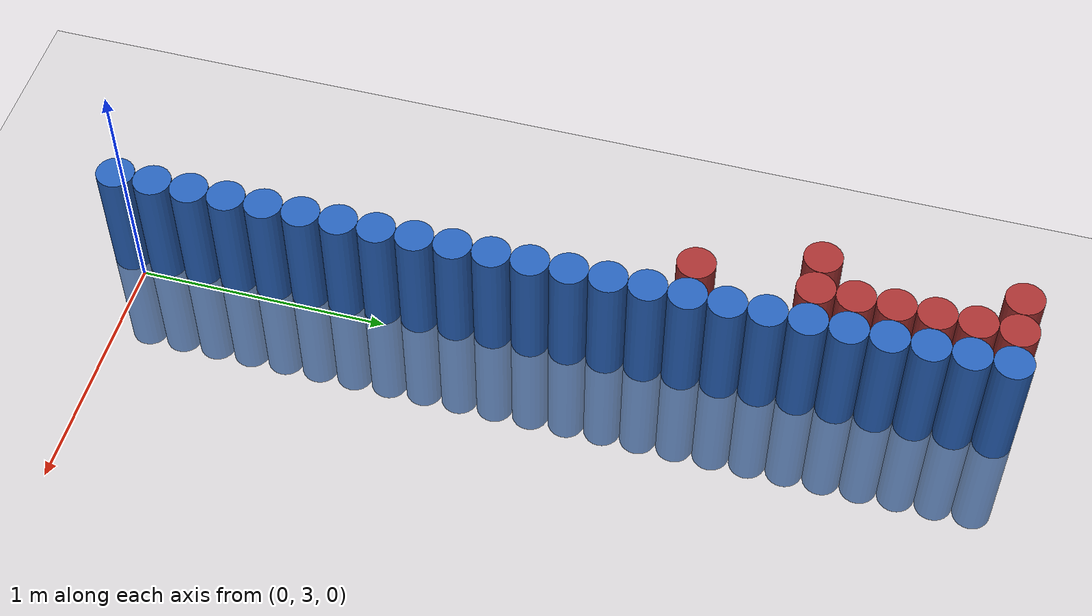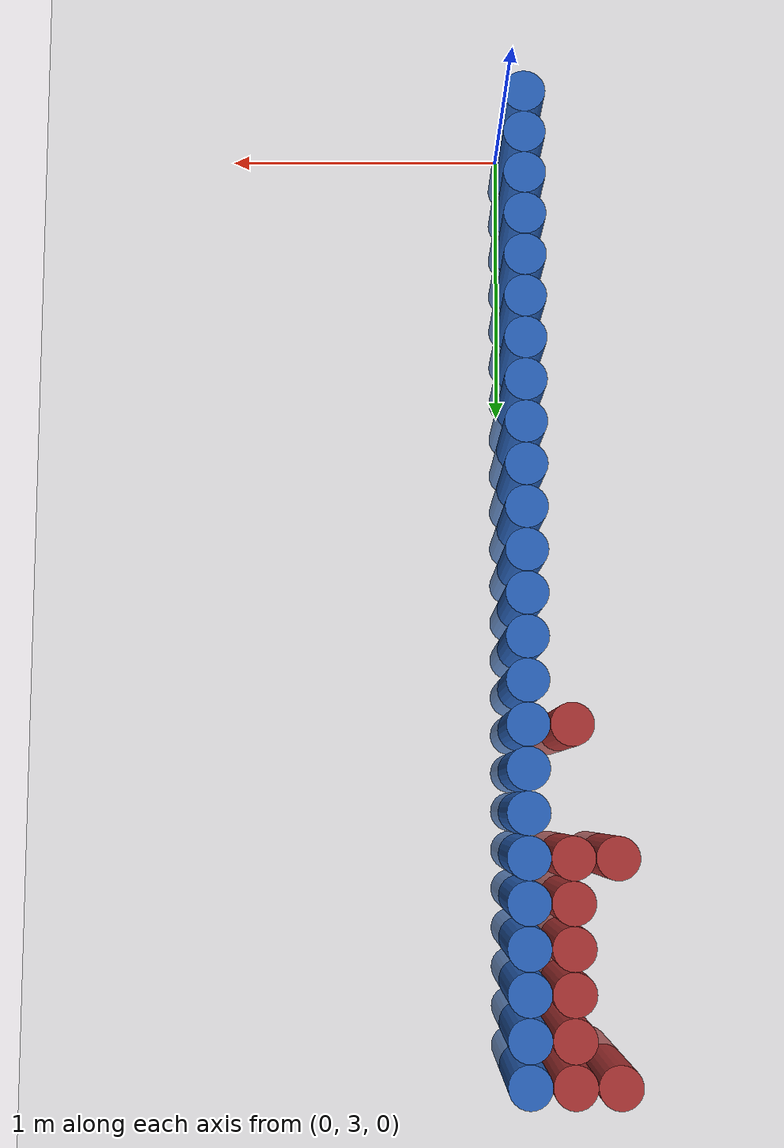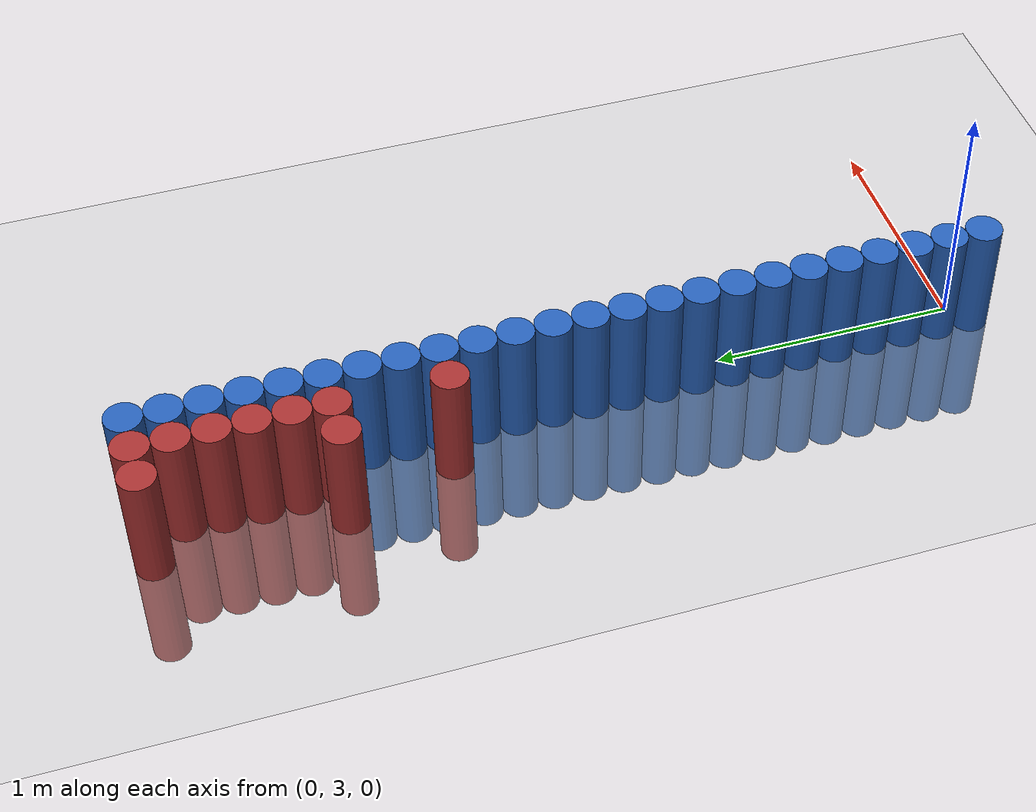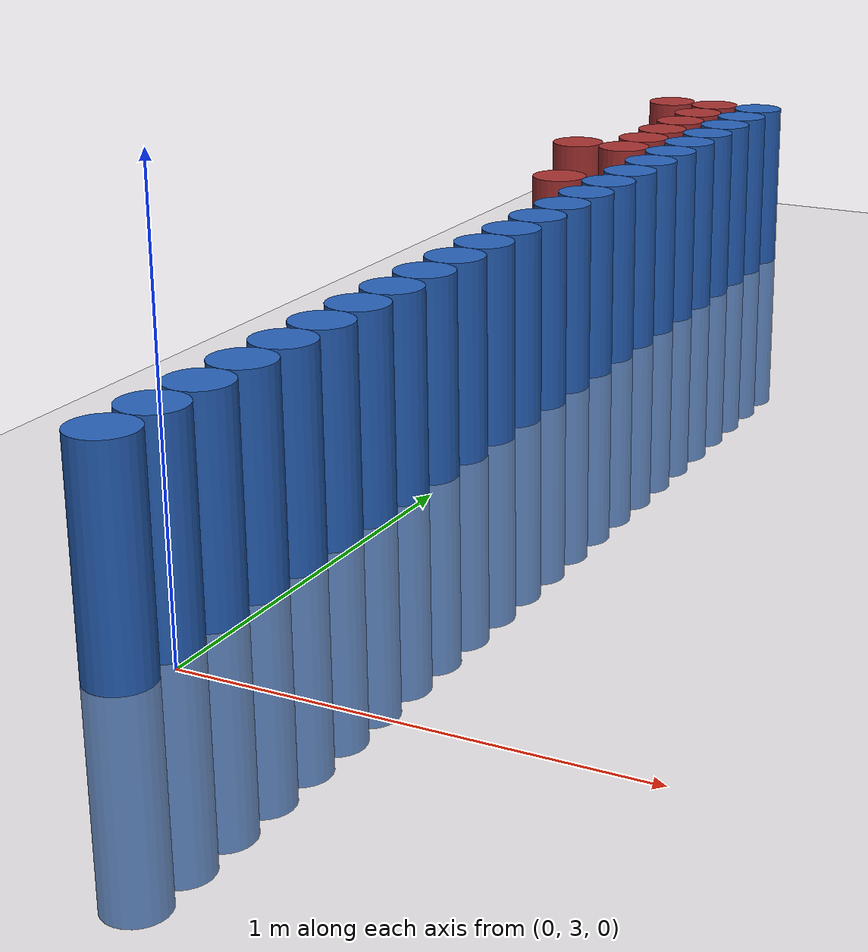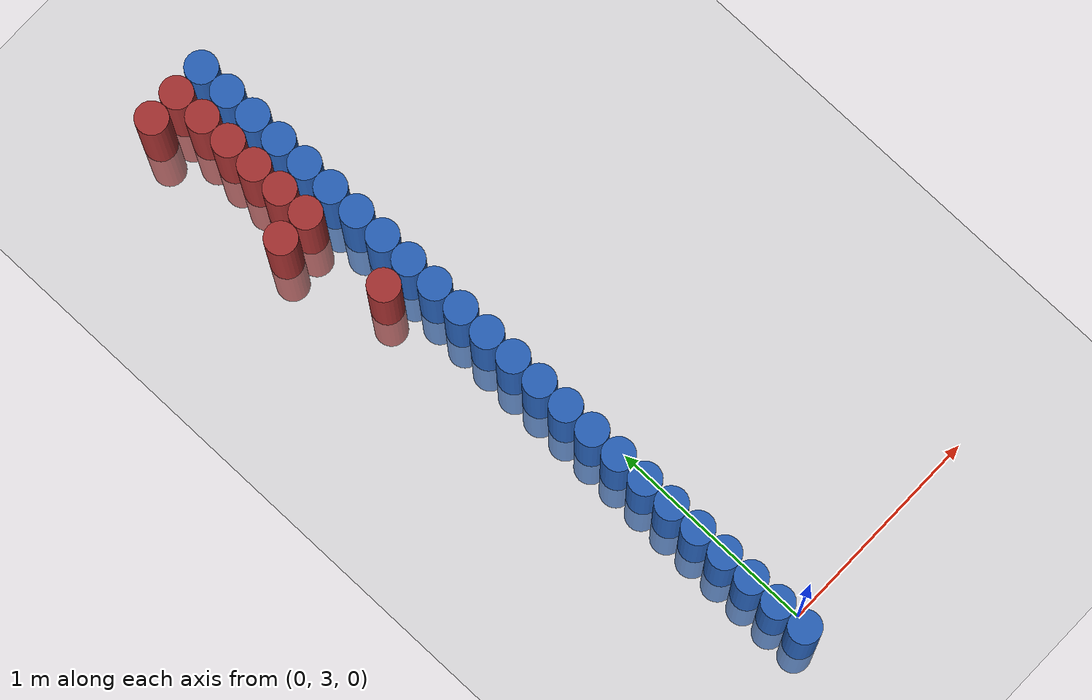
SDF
<sdf version="1.6">
 <world name="default">
  <model name="ground_plane">
   <static>1</static>
   <link name="link">
    <collision name="collision">
     <geometry><plane><normal>0 0 1</normal><size>100 100</size></plane></geometry>
     <surface><friction><ode><mu>100</mu><mu2>50</mu2></ode></friction></surface>
    </collision>
    <visual name="visual">
     <cast_shadows>0</cast_shadows>
     <geometry><plane><normal>0 0 1</normal><size>100 100</size></plane></geometry>
     <material>
      <script><uri>file://media/materials/scripts/gazebo.material</uri><name>Gazebo/Grey</name></script>
     </material>
    </visual>
   </link>
  </model>
  <model name="unit_cylinder_66">
   <static>1</static>
   <pose>-0.075000 2.925000 0.000000 0.000000 0.000000 0.000000</pose>
   <link name="link">
    <inertial>
     <mass>1</mass>
     <inertia><ixx>0.145833</ixx><ixy>0</ixy><ixz>0</ixz><iyy>0.145833</iyy><iyz>0</iyz><izz>0.125</izz></inertia>
    </inertial>
    <collision name="collision">
     <geometry><cylinder><radius>0.075000</radius><length>1</length></cylinder></geometry>
    </collision>
    <visual name="visual">
     <geometry><cylinder><radius>0.075000</radius><length>1</length></cylinder></geometry>
     <material>
      <ambient>0.152000 0.379000 0.720000 1</ambient>
      <diffuse>0.152000 0.379000 0.720000 1</diffuse>
     </material>
     <material>
      <script><name>Gazebo/Grey</name><uri>file://media/materials/scripts/gazebo.material</uri></script>
     </material>
    </visual>
    <sensor name="sensor_contact" type="contact"><contact><collision>collision</collision></contact></sensor>
   </link>
   <plugin filename="gz-sim-touchplugin-system" name="gz::sim::systems::TouchPlugin">
    <target>robot</target>
    <namespace>robot</namespace>
    <time>0.001</time>
    <enabled>true</enabled>
   </plugin>
  </model>
  <model name="unit_cylinder_68">
   <static>1</static>
   <pose>-0.075000 3.075000 0.000000 0.000000 0.000000 0.000000</pose>
   <link name="link">
    <inertial>
     <mass>1</mass>
     <inertia><ixx>0.145833</ixx><ixy>0</ixy><ixz>0</ixz><iyy>0.145833</iyy><iyz>0</iyz><izz>0.125</izz></inertia>
    </inertial>
    <collision name="collision">
     <geometry><cylinder><radius>0.075000</radius><length>1</length></cylinder></geometry>
    </collision>
    <visual name="visual">
     <geometry><cylinder><radius>0.075000</radius><length>1</length></cylinder></geometry>
     <material>
      <ambient>0.152000 0.379000 0.720000 1</ambient>
      <diffuse>0.152000 0.379000 0.720000 1</diffuse>
     </material>
     <material>
      <script><name>Gazebo/Grey</name><uri>file://media/materials/scripts/gazebo.material</uri></script>
     </material>
    </visual>
    <sensor name="sensor_contact" type="contact"><contact><collision>collision</collision></contact></sensor>
   </link>
   <plugin filename="gz-sim-touchplugin-system" name="gz::sim::systems::TouchPlugin">
    <target>robot</target>
    <namespace>robot</namespace>
    <time>0.001</time>
    <enabled>true</enabled>
   </plugin>
  </model>
  <model name="unit_cylinder_70">
   <static>1</static>
   <pose>-0.075000 3.225000 0.000000 0.000000 0.000000 0.000000</pose>
   <link name="link">
    <inertial>
     <mass>1</mass>
     <inertia><ixx>0.145833</ixx><ixy>0</ixy><ixz>0</ixz><iyy>0.145833</iyy><iyz>0</iyz><izz>0.125</izz></inertia>
    </inertial>
    <collision name="collision">
     <geometry><cylinder><radius>0.075000</radius><length>1</length></cylinder></geometry>
    </collision>
    <visual name="visual">
     <geometry><cylinder><radius>0.075000</radius><length>1</length></cylinder></geometry>
     <material>
      <ambient>0.152000 0.379000 0.720000 1</ambient>
      <diffuse>0.152000 0.379000 0.720000 1</diffuse>
     </material>
     <material>
      <script><name>Gazebo/Grey</name><uri>file://media/materials/scripts/gazebo.material</uri></script>
     </material>
    </visual>
    <sensor name="sensor_contact" type="contact"><contact><collision>collision</collision></contact></sensor>
   </link>
   <plugin filename="gz-sim-touchplugin-system" name="gz::sim::systems::TouchPlugin">
    <target>robot</target>
    <namespace>robot</namespace>
    <time>0.001</time>
    <enabled>true</enabled>
   </plugin>
  </model>
  <model name="unit_cylinder_72">
   <static>1</static>
   <pose>-0.075000 3.375000 0.000000 0.000000 0.000000 0.000000</pose>
   <link name="link">
    <inertial>
     <mass>1</mass>
     <inertia><ixx>0.145833</ixx><ixy>0</ixy><ixz>0</ixz><iyy>0.145833</iyy><iyz>0</iyz><izz>0.125</izz></inertia>
    </inertial>
    <collision name="collision">
     <geometry><cylinder><radius>0.075000</radius><length>1</length></cylinder></geometry>
    </collision>
    <visual name="visual">
     <geometry><cylinder><radius>0.075000</radius><length>1</length></cylinder></geometry>
     <material>
      <ambient>0.152000 0.379000 0.720000 1</ambient>
      <diffuse>0.152000 0.379000 0.720000 1</diffuse>
     </material>
     <material>
      <script><name>Gazebo/Grey</name><uri>file://media/materials/scripts/gazebo.material</uri></script>
     </material>
    </visual>
    <sensor name="sensor_contact" type="contact"><contact><collision>collision</collision></contact></sensor>
   </link>
   <plugin filename="gz-sim-touchplugin-system" name="gz::sim::systems::TouchPlugin">
    <target>robot</target>
    <namespace>robot</namespace>
    <time>0.001</time>
    <enabled>true</enabled>
   </plugin>
  </model>
  <model name="unit_cylinder_74">
   <static>1</static>
   <pose>-0.075000 3.525000 0.000000 0.000000 0.000000 0.000000</pose>
   <link name="link">
    <inertial>
     <mass>1</mass>
     <inertia><ixx>0.145833</ixx><ixy>0</ixy><ixz>0</ixz><iyy>0.145833</iyy><iyz>0</iyz><izz>0.125</izz></inertia>
    </inertial>
    <collision name="collision">
     <geometry><cylinder><radius>0.075000</radius><length>1</length></cylinder></geometry>
    </collision>
    <visual name="visual">
     <geometry><cylinder><radius>0.075000</radius><length>1</length></cylinder></geometry>
     <material>
      <ambient>0.152000 0.379000 0.720000 1</ambient>
      <diffuse>0.152000 0.379000 0.720000 1</diffuse>
     </material>
     <material>
      <script><name>Gazebo/Grey</name><uri>file://media/materials/scripts/gazebo.material</uri></script>
     </material>
    </visual>
    <sensor name="sensor_contact" type="contact"><contact><collision>collision</collision></contact></sensor>
   </link>
   <plugin filename="gz-sim-touchplugin-system" name="gz::sim::systems::TouchPlugin">
    <target>robot</target>
    <namespace>robot</namespace>
    <time>0.001</time>
    <enabled>true</enabled>
   </plugin>
  </model>
  <model name="unit_cylinder_76">
   <static>1</static>
   <pose>-0.075000 3.675000 0.000000 0.000000 0.000000 0.000000</pose>
   <link name="link">
    <inertial>
     <mass>1</mass>
     <inertia><ixx>0.145833</ixx><ixy>0</ixy><ixz>0</ixz><iyy>0.145833</iyy><iyz>0</iyz><izz>0.125</izz></inertia>
    </inertial>
    <collision name="collision">
     <geometry><cylinder><radius>0.075000</radius><length>1</length></cylinder></geometry>
    </collision>
    <visual name="visual">
     <geometry><cylinder><radius>0.075000</radius><length>1</length></cylinder></geometry>
     <material>
      <ambient>0.152000 0.379000 0.720000 1</ambient>
      <diffuse>0.152000 0.379000 0.720000 1</diffuse>
     </material>
     <material>
      <script><name>Gazebo/Grey</name><uri>file://media/materials/scripts/gazebo.material</uri></script>
     </material>
    </visual>
    <sensor name="sensor_contact" type="contact"><contact><collision>collision</collision></contact></sensor>
   </link>
   <plugin filename="gz-sim-touchplugin-system" name="gz::sim::systems::TouchPlugin">
    <target>robot</target>
    <namespace>robot</namespace>
    <time>0.001</time>
    <enabled>true</enabled>
   </plugin>
  </model>
  <model name="unit_cylinder_78">
   <static>1</static>
   <pose>-0.075000 3.825000 0.000000 0.000000 0.000000 0.000000</pose>
   <link name="link">
    <inertial>
     <mass>1</mass>
     <inertia><ixx>0.145833</ixx><ixy>0</ixy><ixz>0</ixz><iyy>0.145833</iyy><iyz>0</iyz><izz>0.125</izz></inertia>
    </inertial>
    <collision name="collision">
     <geometry><cylinder><radius>0.075000</radius><length>1</length></cylinder></geometry>
    </collision>
    <visual name="visual">
     <geometry><cylinder><radius>0.075000</radius><length>1</length></cylinder></geometry>
     <material>
      <ambient>0.152000 0.379000 0.720000 1</ambient>
      <diffuse>0.152000 0.379000 0.720000 1</diffuse>
     </material>
     <material>
      <script><name>Gazebo/Grey</name><uri>file://media/materials/scripts/gazebo.material</uri></script>
     </material>
    </visual>
    <sensor name="sensor_contact" type="contact"><contact><collision>collision</collision></contact></sensor>
   </link>
   <plugin filename="gz-sim-touchplugin-system" name="gz::sim::systems::TouchPlugin">
    <target>robot</target>
    <namespace>robot</namespace>
    <time>0.001</time>
    <enabled>true</enabled>
   </plugin>
  </model>
  <model name="unit_cylinder_80">
   <static>1</static>
   <pose>-0.075000 3.975000 0.000000 0.000000 0.000000 0.000000</pose>
   <link name="link">
    <inertial>
     <mass>1</mass>
     <inertia><ixx>0.145833</ixx><ixy>0</ixy><ixz>0</ixz><iyy>0.145833</iyy><iyz>0</iyz><izz>0.125</izz></inertia>
    </inertial>
    <collision name="collision">
     <geometry><cylinder><radius>0.075000</radius><length>1</length></cylinder></geometry>
    </collision>
    <visual name="visual">
     <geometry><cylinder><radius>0.075000</radius><length>1</length></cylinder></geometry>
     <material>
      <ambient>0.152000 0.379000 0.720000 1</ambient>
      <diffuse>0.152000 0.379000 0.720000 1</diffuse>
     </material>
     <material>
      <script><name>Gazebo/Grey</name><uri>file://media/materials/scripts/gazebo.material</uri></script>
     </material>
    </visual>
    <sensor name="sensor_contact" type="contact"><contact><collision>collision</collision></contact></sensor>
   </link>
   <plugin filename="gz-sim-touchplugin-system" name="gz::sim::systems::TouchPlugin">
    <target>robot</target>
    <namespace>robot</namespace>
    <time>0.001</time>
    <enabled>true</enabled>
   </plugin>
  </model>
  <model name="unit_cylinder_82">
   <static>1</static>
   <pose>-0.075000 4.125000 0.000000 0.000000 0.000000 0.000000</pose>
   <link name="link">
    <inertial>
     <mass>1</mass>
     <inertia><ixx>0.145833</ixx><ixy>0</ixy><ixz>0</ixz><iyy>0.145833</iyy><iyz>0</iyz><izz>0.125</izz></inertia>
    </inertial>
    <collision name="collision">
     <geometry><cylinder><radius>0.075000</radius><length>1</length></cylinder></geometry>
    </collision>
    <visual name="visual">
     <geometry><cylinder><radius>0.075000</radius><length>1</length></cylinder></geometry>
     <material>
      <ambient>0.152000 0.379000 0.720000 1</ambient>
      <diffuse>0.152000 0.379000 0.720000 1</diffuse>
     </material>
     <material>
      <script><name>Gazebo/Grey</name><uri>file://media/materials/scripts/gazebo.material</uri></script>
     </material>
    </visual>
    <sensor name="sensor_contact" type="contact"><contact><collision>collision</collision></contact></sensor>
   </link>
   <plugin filename="gz-sim-touchplugin-system" name="gz::sim::systems::TouchPlugin">
    <target>robot</target>
    <namespace>robot</namespace>
    <time>0.001</time>
    <enabled>true</enabled>
   </plugin>
  </model>
  <model name="unit_cylinder_84">
   <static>1</static>
   <pose>-0.075000 4.275000 0.000000 0.000000 0.000000 0.000000</pose>
   <link name="link">
    <inertial>
     <mass>1</mass>
     <inertia><ixx>0.145833</ixx><ixy>0</ixy><ixz>0</ixz><iyy>0.145833</iyy><iyz>0</iyz><izz>0.125</izz></inertia>
    </inertial>
    <collision name="collision">
     <geometry><cylinder><radius>0.075000</radius><length>1</length></cylinder></geometry>
    </collision>
    <visual name="visual">
     <geometry><cylinder><radius>0.075000</radius><length>1</length></cylinder></geometry>
     <material>
      <ambient>0.152000 0.379000 0.720000 1</ambient>
      <diffuse>0.152000 0.379000 0.720000 1</diffuse>
     </material>
     <material>
      <script><name>Gazebo/Grey</name><uri>file://media/materials/scripts/gazebo.material</uri></script>
     </material>
    </visual>
    <sensor name="sensor_contact" type="contact"><contact><collision>collision</collision></contact></sensor>
   </link>
   <plugin filename="gz-sim-touchplugin-system" name="gz::sim::systems::TouchPlugin">
    <target>robot</target>
    <namespace>robot</namespace>
    <time>0.001</time>
    <enabled>true</enabled>
   </plugin>
  </model>
  <model name="unit_cylinder_86">
   <static>1</static>
   <pose>-0.075000 4.425000 0.000000 0.000000 0.000000 0.000000</pose>
   <link name="link">
    <inertial>
     <mass>1</mass>
     <inertia><ixx>0.145833</ixx><ixy>0</ixy><ixz>0</ixz><iyy>0.145833</iyy><iyz>0</iyz><izz>0.125</izz></inertia>
    </inertial>
    <collision name="collision">
     <geometry><cylinder><radius>0.075000</radius><length>1</length></cylinder></geometry>
    </collision>
    <visual name="visual">
     <geometry><cylinder><radius>0.075000</radius><length>1</length></cylinder></geometry>
     <material>
      <ambient>0.152000 0.379000 0.720000 1</ambient>
      <diffuse>0.152000 0.379000 0.720000 1</diffuse>
     </material>
     <material>
      <script><name>Gazebo/Grey</name><uri>file://media/materials/scripts/gazebo.material</uri></script>
     </material>
    </visual>
    <sensor name="sensor_contact" type="contact"><contact><collision>collision</collision></contact></sensor>
   </link>
   <plugin filename="gz-sim-touchplugin-system" name="gz::sim::systems::TouchPlugin">
    <target>robot</target>
    <namespace>robot</namespace>
    <time>0.001</time>
    <enabled>true</enabled>
   </plugin>
  </model>
  <model name="unit_cylinder_88">
   <static>1</static>
   <pose>-0.075000 4.575000 0.000000 0.000000 0.000000 0.000000</pose>
   <link name="link">
    <inertial>
     <mass>1</mass>
     <inertia><ixx>0.145833</ixx><ixy>0</ixy><ixz>0</ixz><iyy>0.145833</iyy><iyz>0</iyz><izz>0.125</izz></inertia>
    </inertial>
    <collision name="collision">
     <geometry><cylinder><radius>0.075000</radius><length>1</length></cylinder></geometry>
    </collision>
    <visual name="visual">
     <geometry><cylinder><radius>0.075000</radius><length>1</length></cylinder></geometry>
     <material>
      <ambient>0.152000 0.379000 0.720000 1</ambient>
      <diffuse>0.152000 0.379000 0.720000 1</diffuse>
     </material>
     <material>
      <script><name>Gazebo/Grey</name><uri>file://media/materials/scripts/gazebo.material</uri></script>
     </material>
    </visual>
    <sensor name="sensor_contact" type="contact"><contact><collision>collision</collision></contact></sensor>
   </link>
   <plugin filename="gz-sim-touchplugin-system" name="gz::sim::systems::TouchPlugin">
    <target>robot</target>
    <namespace>robot</namespace>
    <time>0.001</time>
    <enabled>true</enabled>
   </plugin>
  </model>
  <model name="unit_cylinder_90">
   <static>1</static>
   <pose>-0.075000 4.725000 0.000000 0.000000 0.000000 0.000000</pose>
   <link name="link">
    <inertial>
     <mass>1</mass>
     <inertia><ixx>0.145833</ixx><ixy>0</ixy><ixz>0</ixz><iyy>0.145833</iyy><iyz>0</iyz><izz>0.125</izz></inertia>
    </inertial>
    <collision name="collision">
     <geometry><cylinder><radius>0.075000</radius><length>1</length></cylinder></geometry>
    </collision>
    <visual name="visual">
     <geometry><cylinder><radius>0.075000</radius><length>1</length></cylinder></geometry>
     <material>
      <ambient>0.152000 0.379000 0.720000 1</ambient>
      <diffuse>0.152000 0.379000 0.720000 1</diffuse>
     </material>
     <material>
      <script><name>Gazebo/Grey</name><uri>file://media/materials/scripts/gazebo.material</uri></script>
     </material>
    </visual>
    <sensor name="sensor_contact" type="contact"><contact><collision>collision</collision></contact></sensor>
   </link>
   <plugin filename="gz-sim-touchplugin-system" name="gz::sim::systems::TouchPlugin">
    <target>robot</target>
    <namespace>robot</namespace>
    <time>0.001</time>
    <enabled>true</enabled>
   </plugin>
  </model>
  <model name="unit_cylinder_92">
   <static>1</static>
   <pose>-0.075000 4.875000 0.000000 0.000000 0.000000 0.000000</pose>
   <link name="link">
    <inertial>
     <mass>1</mass>
     <inertia><ixx>0.145833</ixx><ixy>0</ixy><ixz>0</ixz><iyy>0.145833</iyy><iyz>0</iyz><izz>0.125</izz></inertia>
    </inertial>
    <collision name="collision">
     <geometry><cylinder><radius>0.075000</radius><length>1</length></cylinder></geometry>
    </collision>
    <visual name="visual">
     <geometry><cylinder><radius>0.075000</radius><length>1</length></cylinder></geometry>
     <material>
      <ambient>0.152000 0.379000 0.720000 1</ambient>
      <diffuse>0.152000 0.379000 0.720000 1</diffuse>
     </material>
     <material>
      <script><name>Gazebo/Grey</name><uri>file://media/materials/scripts/gazebo.material</uri></script>
     </material>
    </visual>
    <sensor name="sensor_contact" type="contact"><contact><collision>collision</collision></contact></sensor>
   </link>
   <plugin filename="gz-sim-touchplugin-system" name="gz::sim::systems::TouchPlugin">
    <target>robot</target>
    <namespace>robot</namespace>
    <time>0.001</time>
    <enabled>true</enabled>
   </plugin>
  </model>
  <model name="unit_cylinder_94">
   <static>1</static>
   <pose>-0.075000 5.025000 0.000000 0.000000 0.000000 0.000000</pose>
   <link name="link">
    <inertial>
     <mass>1</mass>
     <inertia><ixx>0.145833</ixx><ixy>0</ixy><ixz>0</ixz><iyy>0.145833</iyy><iyz>0</iyz><izz>0.125</izz></inertia>
    </inertial>
    <collision name="collision">
     <geometry><cylinder><radius>0.075000</radius><length>1</length></cylinder></geometry>
    </collision>
    <visual name="visual">
     <geometry><cylinder><radius>0.075000</radius><length>1</length></cylinder></geometry>
     <material>
      <ambient>0.152000 0.379000 0.720000 1</ambient>
      <diffuse>0.152000 0.379000 0.720000 1</diffuse>
     </material>
     <material>
      <script><name>Gazebo/Grey</name><uri>file://media/materials/scripts/gazebo.material</uri></script>
     </material>
    </visual>
    <sensor name="sensor_contact" type="contact"><contact><collision>collision</collision></contact></sensor>
   </link>
   <plugin filename="gz-sim-touchplugin-system" name="gz::sim::systems::TouchPlugin">
    <target>robot</target>
    <namespace>robot</namespace>
    <time>0.001</time>
    <enabled>true</enabled>
   </plugin>
  </model>
  <model name="unit_cylinder_269">
   <static>1</static>
   <pose>-0.375000 5.625000 0.000000 0.000000 0.000000 0.000000</pose>
   <link name="link">
    <inertial>
     <mass>1</mass>
     <inertia><ixx>0.145833</ixx><ixy>0</ixy><ixz>0</ixz><iyy>0.145833</iyy><iyz>0</iyz><izz>0.125</izz></inertia>
    </inertial>
    <collision name="collision">
     <geometry><cylinder><radius>0.075000</radius><length>1</length></cylinder></geometry>
    </collision>
    <visual name="visual">
     <geometry><cylinder><radius>0.075000</radius><length>1</length></cylinder></geometry>
     <material>
      <ambient>0.648000 0.192000 0.192000 1</ambient>
      <diffuse>0.648000 0.192000 0.192000 1</diffuse>
     </material>
     <material>
      <script><name>Gazebo/Grey</name><uri>file://media/materials/scripts/gazebo.material</uri></script>
     </material>
    </visual>
    <sensor name="sensor_contact" type="contact"><contact><collision>collision</collision></contact></sensor>
   </link>
   <plugin filename="gz-sim-touchplugin-system" name="gz::sim::systems::TouchPlugin">
    <target>robot</target>
    <namespace>robot</namespace>
    <time>0.001</time>
    <enabled>true</enabled>
   </plugin>
  </model>
  <model name="unit_cylinder_270">
   <static>1</static>
   <pose>-0.375000 6.375000 0.000000 0.000000 0.000000 0.000000</pose>
   <link name="link">
    <inertial>
     <mass>1</mass>
     <inertia><ixx>0.145833</ixx><ixy>0</ixy><ixz>0</ixz><iyy>0.145833</iyy><iyz>0</iyz><izz>0.125</izz></inertia>
    </inertial>
    <collision name="collision">
     <geometry><cylinder><radius>0.075000</radius><length>1</length></cylinder></geometry>
    </collision>
    <visual name="visual">
     <geometry><cylinder><radius>0.075000</radius><length>1</length></cylinder></geometry>
     <material>
      <ambient>0.648000 0.192000 0.192000 1</ambient>
      <diffuse>0.648000 0.192000 0.192000 1</diffuse>
     </material>
     <material>
      <script><name>Gazebo/Grey</name><uri>file://media/materials/scripts/gazebo.material</uri></script>
     </material>
    </visual>
    <sensor name="sensor_contact" type="contact"><contact><collision>collision</collision></contact></sensor>
   </link>
   <plugin filename="gz-sim-touchplugin-system" name="gz::sim::systems::TouchPlugin">
    <target>robot</target>
    <namespace>robot</namespace>
    <time>0.001</time>
    <enabled>true</enabled>
   </plugin>
  </model>
  <model name="unit_cylinder_276">
   <static>1</static>
   <pose>-0.225000 5.175000 0.000000 0.000000 0.000000 0.000000</pose>
   <link name="link">
    <inertial>
     <mass>1</mass>
     <inertia><ixx>0.145833</ixx><ixy>0</ixy><ixz>0</ixz><iyy>0.145833</iyy><iyz>0</iyz><izz>0.125</izz></inertia>
    </inertial>
    <collision name="collision">
     <geometry><cylinder><radius>0.075000</radius><length>1</length></cylinder></geometry>
    </collision>
    <visual name="visual">
     <geometry><cylinder><radius>0.075000</radius><length>1</length></cylinder></geometry>
     <material>
      <ambient>0.648000 0.192000 0.192000 1</ambient>
      <diffuse>0.648000 0.192000 0.192000 1</diffuse>
     </material>
     <material>
      <script><name>Gazebo/Grey</name><uri>file://media/materials/scripts/gazebo.material</uri></script>
     </material>
    </visual>
    <sensor name="sensor_contact" type="contact"><contact><collision>collision</collision></contact></sensor>
   </link>
   <plugin filename="gz-sim-touchplugin-system" name="gz::sim::systems::TouchPlugin">
    <target>robot</target>
    <namespace>robot</namespace>
    <time>0.001</time>
    <enabled>true</enabled>
   </plugin>
  </model>
  <model name="unit_cylinder_277">
   <static>1</static>
   <pose>-0.225000 5.625000 0.000000 0.000000 0.000000 0.000000</pose>
   <link name="link">
    <inertial>
     <mass>1</mass>
     <inertia><ixx>0.145833</ixx><ixy>0</ixy><ixz>0</ixz><iyy>0.145833</iyy><iyz>0</iyz><izz>0.125</izz></inertia>
    </inertial>
    <collision name="collision">
     <geometry><cylinder><radius>0.075000</radius><length>1</length></cylinder></geometry>
    </collision>
    <visual name="visual">
     <geometry><cylinder><radius>0.075000</radius><length>1</length></cylinder></geometry>
     <material>
      <ambient>0.648000 0.192000 0.192000 1</ambient>
      <diffuse>0.648000 0.192000 0.192000 1</diffuse>
     </material>
     <material>
      <script><name>Gazebo/Grey</name><uri>file://media/materials/scripts/gazebo.material</uri></script>
     </material>
    </visual>
    <sensor name="sensor_contact" type="contact"><contact><collision>collision</collision></contact></sensor>
   </link>
   <plugin filename="gz-sim-touchplugin-system" name="gz::sim::systems::TouchPlugin">
    <target>robot</target>
    <namespace>robot</namespace>
    <time>0.001</time>
    <enabled>true</enabled>
   </plugin>
  </model>
  <model name="unit_cylinder_278">
   <static>1</static>
   <pose>-0.225000 5.775000 0.000000 0.000000 0.000000 0.000000</pose>
   <link name="link">
    <inertial>
     <mass>1</mass>
     <inertia><ixx>0.145833</ixx><ixy>0</ixy><ixz>0</ixz><iyy>0.145833</iyy><iyz>0</iyz><izz>0.125</izz></inertia>
    </inertial>
    <collision name="collision">
     <geometry><cylinder><radius>0.075000</radius><length>1</length></cylinder></geometry>
    </collision>
    <visual name="visual">
     <geometry><cylinder><radius>0.075000</radius><length>1</length></cylinder></geometry>
     <material>
      <ambient>0.648000 0.192000 0.192000 1</ambient>
      <diffuse>0.648000 0.192000 0.192000 1</diffuse>
     </material>
     <material>
      <script><name>Gazebo/Grey</name><uri>file://media/materials/scripts/gazebo.material</uri></script>
     </material>
    </visual>
    <sensor name="sensor_contact" type="contact"><contact><collision>collision</collision></contact></sensor>
   </link>
   <plugin filename="gz-sim-touchplugin-system" name="gz::sim::systems::TouchPlugin">
    <target>robot</target>
    <namespace>robot</namespace>
    <time>0.001</time>
    <enabled>true</enabled>
   </plugin>
  </model>
  <model name="unit_cylinder_279">
   <static>1</static>
   <pose>-0.225000 5.925000 0.000000 0.000000 0.000000 0.000000</pose>
   <link name="link">
    <inertial>
     <mass>1</mass>
     <inertia><ixx>0.145833</ixx><ixy>0</ixy><ixz>0</ixz><iyy>0.145833</iyy><iyz>0</iyz><izz>0.125</izz></inertia>
    </inertial>
    <collision name="collision">
     <geometry><cylinder><radius>0.075000</radius><length>1</length></cylinder></geometry>
    </collision>
    <visual name="visual">
     <geometry><cylinder><radius>0.075000</radius><length>1</length></cylinder></geometry>
     <material>
      <ambient>0.648000 0.192000 0.192000 1</ambient>
      <diffuse>0.648000 0.192000 0.192000 1</diffuse>
     </material>
     <material>
      <script><name>Gazebo/Grey</name><uri>file://media/materials/scripts/gazebo.material</uri></script>
     </material>
    </visual>
    <sensor name="sensor_contact" type="contact"><contact><collision>collision</collision></contact></sensor>
   </link>
   <plugin filename="gz-sim-touchplugin-system" name="gz::sim::systems::TouchPlugin">
    <target>robot</target>
    <namespace>robot</namespace>
    <time>0.001</time>
    <enabled>true</enabled>
   </plugin>
  </model>
  <model name="unit_cylinder_280">
   <static>1</static>
   <pose>-0.225000 6.075000 0.000000 0.000000 0.000000 0.000000</pose>
   <link name="link">
    <inertial>
     <mass>1</mass>
     <inertia><ixx>0.145833</ixx><ixy>0</ixy><ixz>0</ixz><iyy>0.145833</iyy><iyz>0</iyz><izz>0.125</izz></inertia>
    </inertial>
    <collision name="collision">
     <geometry><cylinder><radius>0.075000</radius><length>1</length></cylinder></geometry>
    </collision>
    <visual name="visual">
     <geometry><cylinder><radius>0.075000</radius><length>1</length></cylinder></geometry>
     <material>
      <ambient>0.648000 0.192000 0.192000 1</ambient>
      <diffuse>0.648000 0.192000 0.192000 1</diffuse>
     </material>
     <material>
      <script><name>Gazebo/Grey</name><uri>file://media/materials/scripts/gazebo.material</uri></script>
     </material>
    </visual>
    <sensor name="sensor_contact" type="contact"><contact><collision>collision</collision></contact></sensor>
   </link>
   <plugin filename="gz-sim-touchplugin-system" name="gz::sim::systems::TouchPlugin">
    <target>robot</target>
    <namespace>robot</namespace>
    <time>0.001</time>
    <enabled>true</enabled>
   </plugin>
  </model>
  <model name="unit_cylinder_281">
   <static>1</static>
   <pose>-0.225000 6.225000 0.000000 0.000000 0.000000 0.000000</pose>
   <link name="link">
    <inertial>
     <mass>1</mass>
     <inertia><ixx>0.145833</ixx><ixy>0</ixy><ixz>0</ixz><iyy>0.145833</iyy><iyz>0</iyz><izz>0.125</izz></inertia>
    </inertial>
    <collision name="collision">
     <geometry><cylinder><radius>0.075000</radius><length>1</length></cylinder></geometry>
    </collision>
    <visual name="visual">
     <geometry><cylinder><radius>0.075000</radius><length>1</length></cylinder></geometry>
     <material>
      <ambient>0.648000 0.192000 0.192000 1</ambient>
      <diffuse>0.648000 0.192000 0.192000 1</diffuse>
     </material>
     <material>
      <script><name>Gazebo/Grey</name><uri>file://media/materials/scripts/gazebo.material</uri></script>
     </material>
    </visual>
    <sensor name="sensor_contact" type="contact"><contact><collision>collision</collision></contact></sensor>
   </link>
   <plugin filename="gz-sim-touchplugin-system" name="gz::sim::systems::TouchPlugin">
    <target>robot</target>
    <namespace>robot</namespace>
    <time>0.001</time>
    <enabled>true</enabled>
   </plugin>
  </model>
  <model name="unit_cylinder_282">
   <static>1</static>
   <pose>-0.225000 6.375000 0.000000 0.000000 0.000000 0.000000</pose>
   <link name="link">
    <inertial>
     <mass>1</mass>
     <inertia><ixx>0.145833</ixx><ixy>0</ixy><ixz>0</ixz><iyy>0.145833</iyy><iyz>0</iyz><izz>0.125</izz></inertia>
    </inertial>
    <collision name="collision">
     <geometry><cylinder><radius>0.075000</radius><length>1</length></cylinder></geometry>
    </collision>
    <visual name="visual">
     <geometry><cylinder><radius>0.075000</radius><length>1</length></cylinder></geometry>
     <material>
      <ambient>0.648000 0.192000 0.192000 1</ambient>
      <diffuse>0.648000 0.192000 0.192000 1</diffuse>
     </material>
     <material>
      <script><name>Gazebo/Grey</name><uri>file://media/materials/scripts/gazebo.material</uri></script>
     </material>
    </visual>
    <sensor name="sensor_contact" type="contact"><contact><collision>collision</collision></contact></sensor>
   </link>
   <plugin filename="gz-sim-touchplugin-system" name="gz::sim::systems::TouchPlugin">
    <target>robot</target>
    <namespace>robot</namespace>
    <time>0.001</time>
    <enabled>true</enabled>
   </plugin>
  </model>
  <model name="unit_cylinder_295">
   <static>1</static>
   <pose>-0.075000 5.175000 0.000000 0.000000 0.000000 0.000000</pose>
   <link name="link">
    <inertial>
     <mass>1</mass>
     <inertia><ixx>0.145833</ixx><ixy>0</ixy><ixz>0</ixz><iyy>0.145833</iyy><iyz>0</iyz><izz>0.125</izz></inertia>
    </inertial>
    <collision name="collision">
     <geometry><cylinder><radius>0.075000</radius><length>1</length></cylinder></geometry>
    </collision>
    <visual name="visual">
     <geometry><cylinder><radius>0.075000</radius><length>1</length></cylinder></geometry>
     <material>
      <ambient>0.152000 0.379000 0.720000 1</ambient>
      <diffuse>0.152000 0.379000 0.720000 1</diffuse>
     </material>
     <material>
      <script><name>Gazebo/Grey</name><uri>file://media/materials/scripts/gazebo.material</uri></script>
     </material>
    </visual>
    <sensor name="sensor_contact" type="contact"><contact><collision>collision</collision></contact></sensor>
   </link>
   <plugin filename="gz-sim-touchplugin-system" name="gz::sim::systems::TouchPlugin">
    <target>robot</target>
    <namespace>robot</namespace>
    <time>0.001</time>
    <enabled>true</enabled>
   </plugin>
  </model>
  <model name="unit_cylinder_296">
   <static>1</static>
   <pose>-0.075000 5.325000 0.000000 0.000000 0.000000 0.000000</pose>
   <link name="link">
    <inertial>
     <mass>1</mass>
     <inertia><ixx>0.145833</ixx><ixy>0</ixy><ixz>0</ixz><iyy>0.145833</iyy><iyz>0</iyz><izz>0.125</izz></inertia>
    </inertial>
    <collision name="collision">
     <geometry><cylinder><radius>0.075000</radius><length>1</length></cylinder></geometry>
    </collision>
    <visual name="visual">
     <geometry><cylinder><radius>0.075000</radius><length>1</length></cylinder></geometry>
     <material>
      <ambient>0.152000 0.379000 0.720000 1</ambient>
      <diffuse>0.152000 0.379000 0.720000 1</diffuse>
     </material>
     <material>
      <script><name>Gazebo/Grey</name><uri>file://media/materials/scripts/gazebo.material</uri></script>
     </material>
    </visual>
    <sensor name="sensor_contact" type="contact"><contact><collision>collision</collision></contact></sensor>
   </link>
   <plugin filename="gz-sim-touchplugin-system" name="gz::sim::systems::TouchPlugin">
    <target>robot</target>
    <namespace>robot</namespace>
    <time>0.001</time>
    <enabled>true</enabled>
   </plugin>
  </model>
  <model name="unit_cylinder_297">
   <static>1</static>
   <pose>-0.075000 5.475000 0.000000 0.000000 0.000000 0.000000</pose>
   <link name="link">
    <inertial>
     <mass>1</mass>
     <inertia><ixx>0.145833</ixx><ixy>0</ixy><ixz>0</ixz><iyy>0.145833</iyy><iyz>0</iyz><izz>0.125</izz></inertia>
    </inertial>
    <collision name="collision">
     <geometry><cylinder><radius>0.075000</radius><length>1</length></cylinder></geometry>
    </collision>
    <visual name="visual">
     <geometry><cylinder><radius>0.075000</radius><length>1</length></cylinder></geometry>
     <material>
      <ambient>0.152000 0.379000 0.720000 1</ambient>
      <diffuse>0.152000 0.379000 0.720000 1</diffuse>
     </material>
     <material>
      <script><name>Gazebo/Grey</name><uri>file://media/materials/scripts/gazebo.material</uri></script>
     </material>
    </visual>
    <sensor name="sensor_contact" type="contact"><contact><collision>collision</collision></contact></sensor>
   </link>
   <plugin filename="gz-sim-touchplugin-system" name="gz::sim::systems::TouchPlugin">
    <target>robot</target>
    <namespace>robot</namespace>
    <time>0.001</time>
    <enabled>true</enabled>
   </plugin>
  </model>
  <model name="unit_cylinder_298">
   <static>1</static>
   <pose>-0.075000 5.625000 0.000000 0.000000 0.000000 0.000000</pose>
   <link name="link">
    <inertial>
     <mass>1</mass>
     <inertia><ixx>0.145833</ixx><ixy>0</ixy><ixz>0</ixz><iyy>0.145833</iyy><iyz>0</iyz><izz>0.125</izz></inertia>
    </inertial>
    <collision name="collision">
     <geometry><cylinder><radius>0.075000</radius><length>1</length></cylinder></geometry>
    </collision>
    <visual name="visual">
     <geometry><cylinder><radius>0.075000</radius><length>1</length></cylinder></geometry>
     <material>
      <ambient>0.152000 0.379000 0.720000 1</ambient>
      <diffuse>0.152000 0.379000 0.720000 1</diffuse>
     </material>
     <material>
      <script><name>Gazebo/Grey</name><uri>file://media/materials/scripts/gazebo.material</uri></script>
     </material>
    </visual>
    <sensor name="sensor_contact" type="contact"><contact><collision>collision</collision></contact></sensor>
   </link>
   <plugin filename="gz-sim-touchplugin-system" name="gz::sim::systems::TouchPlugin">
    <target>robot</target>
    <namespace>robot</namespace>
    <time>0.001</time>
    <enabled>true</enabled>
   </plugin>
  </model>
  <model name="unit_cylinder_299">
   <static>1</static>
   <pose>-0.075000 5.775000 0.000000 0.000000 0.000000 0.000000</pose>
   <link name="link">
    <inertial>
     <mass>1</mass>
     <inertia><ixx>0.145833</ixx><ixy>0</ixy><ixz>0</ixz><iyy>0.145833</iyy><iyz>0</iyz><izz>0.125</izz></inertia>
    </inertial>
    <collision name="collision">
     <geometry><cylinder><radius>0.075000</radius><length>1</length></cylinder></geometry>
    </collision>
    <visual name="visual">
     <geometry><cylinder><radius>0.075000</radius><length>1</length></cylinder></geometry>
     <material>
      <ambient>0.152000 0.379000 0.720000 1</ambient>
      <diffuse>0.152000 0.379000 0.720000 1</diffuse>
     </material>
     <material>
      <script><name>Gazebo/Grey</name><uri>file://media/materials/scripts/gazebo.material</uri></script>
     </material>
    </visual>
    <sensor name="sensor_contact" type="contact"><contact><collision>collision</collision></contact></sensor>
   </link>
   <plugin filename="gz-sim-touchplugin-system" name="gz::sim::systems::TouchPlugin">
    <target>robot</target>
    <namespace>robot</namespace>
    <time>0.001</time>
    <enabled>true</enabled>
   </plugin>
  </model>
  <model name="unit_cylinder_300">
   <static>1</static>
   <pose>-0.075000 5.925000 0.000000 0.000000 0.000000 0.000000</pose>
   <link name="link">
    <inertial>
     <mass>1</mass>
     <inertia><ixx>0.145833</ixx><ixy>0</ixy><ixz>0</ixz><iyy>0.145833</iyy><iyz>0</iyz><izz>0.125</izz></inertia>
    </inertial>
    <collision name="collision">
     <geometry><cylinder><radius>0.075000</radius><length>1</length></cylinder></geometry>
    </collision>
    <visual name="visual">
     <geometry><cylinder><radius>0.075000</radius><length>1</length></cylinder></geometry>
     <material>
      <ambient>0.152000 0.379000 0.720000 1</ambient>
      <diffuse>0.152000 0.379000 0.720000 1</diffuse>
     </material>
     <material>
      <script><name>Gazebo/Grey</name><uri>file://media/materials/scripts/gazebo.material</uri></script>
     </material>
    </visual>
    <sensor name="sensor_contact" type="contact"><contact><collision>collision</collision></contact></sensor>
   </link>
   <plugin filename="gz-sim-touchplugin-system" name="gz::sim::systems::TouchPlugin">
    <target>robot</target>
    <namespace>robot</namespace>
    <time>0.001</time>
    <enabled>true</enabled>
   </plugin>
  </model>
  <model name="unit_cylinder_301">
   <static>1</static>
   <pose>-0.075000 6.075000 0.000000 0.000000 0.000000 0.000000</pose>
   <link name="link">
    <inertial>
     <mass>1</mass>
     <inertia><ixx>0.145833</ixx><ixy>0</ixy><ixz>0</ixz><iyy>0.145833</iyy><iyz>0</iyz><izz>0.125</izz></inertia>
    </inertial>
    <collision name="collision">
     <geometry><cylinder><radius>0.075000</radius><length>1</length></cylinder></geometry>
    </collision>
    <visual name="visual">
     <geometry><cylinder><radius>0.075000</radius><length>1</length></cylinder></geometry>
     <material>
      <ambient>0.152000 0.379000 0.720000 1</ambient>
      <diffuse>0.152000 0.379000 0.720000 1</diffuse>
     </material>
     <material>
      <script><name>Gazebo/Grey</name><uri>file://media/materials/scripts/gazebo.material</uri></script>
     </material>
    </visual>
    <sensor name="sensor_contact" type="contact"><contact><collision>collision</collision></contact></sensor>
   </link>
   <plugin filename="gz-sim-touchplugin-system" name="gz::sim::systems::TouchPlugin">
    <target>robot</target>
    <namespace>robot</namespace>
    <time>0.001</time>
    <enabled>true</enabled>
   </plugin>
  </model>
  <model name="unit_cylinder_302">
   <static>1</static>
   <pose>-0.075000 6.225000 0.000000 0.000000 0.000000 0.000000</pose>
   <link name="link">
    <inertial>
     <mass>1</mass>
     <inertia><ixx>0.145833</ixx><ixy>0</ixy><ixz>0</ixz><iyy>0.145833</iyy><iyz>0</iyz><izz>0.125</izz></inertia>
    </inertial>
    <collision name="collision">
     <geometry><cylinder><radius>0.075000</radius><length>1</length></cylinder></geometry>
    </collision>
    <visual name="visual">
     <geometry><cylinder><radius>0.075000</radius><length>1</length></cylinder></geometry>
     <material>
      <ambient>0.152000 0.379000 0.720000 1</ambient>
      <diffuse>0.152000 0.379000 0.720000 1</diffuse>
     </material>
     <material>
      <script><name>Gazebo/Grey</name><uri>file://media/materials/scripts/gazebo.material</uri></script>
     </material>
    </visual>
    <sensor name="sensor_contact" type="contact"><contact><collision>collision</collision></contact></sensor>
   </link>
   <plugin filename="gz-sim-touchplugin-system" name="gz::sim::systems::TouchPlugin">
    <target>robot</target>
    <namespace>robot</namespace>
    <time>0.001</time>
    <enabled>true</enabled>
   </plugin>
  </model>
  <model name="unit_cylinder_303">
   <static>1</static>
   <pose>-0.075000 6.375000 0.000000 0.000000 0.000000 0.000000</pose>
   <link name="link">
    <inertial>
     <mass>1</mass>
     <inertia><ixx>0.145833</ixx><ixy>0</ixy><ixz>0</ixz><iyy>0.145833</iyy><iyz>0</iyz><izz>0.125</izz></inertia>
    </inertial>
    <collision name="collision">
     <geometry><cylinder><radius>0.075000</radius><length>1</length></cylinder></geometry>
    </collision>
    <visual name="visual">
     <geometry><cylinder><radius>0.075000</radius><length>1</length></cylinder></geometry>
     <material>
      <ambient>0.152000 0.379000 0.720000 1</ambient>
      <diffuse>0.152000 0.379000 0.720000 1</diffuse>
     </material>
     <material>
      <script><name>Gazebo/Grey</name><uri>file://media/materials/scripts/gazebo.material</uri></script>
     </material>
    </visual>
    <sensor name="sensor_contact" type="contact"><contact><collision>collision</collision></contact></sensor>
   </link>
   <plugin filename="gz-sim-touchplugin-system" name="gz::sim::systems::TouchPlugin">
    <target>robot</target>
    <namespace>robot</namespace>
    <time>0.001</time>
    <enabled>true</enabled>
   </plugin>
  </model>
 </world>
</sdf>
